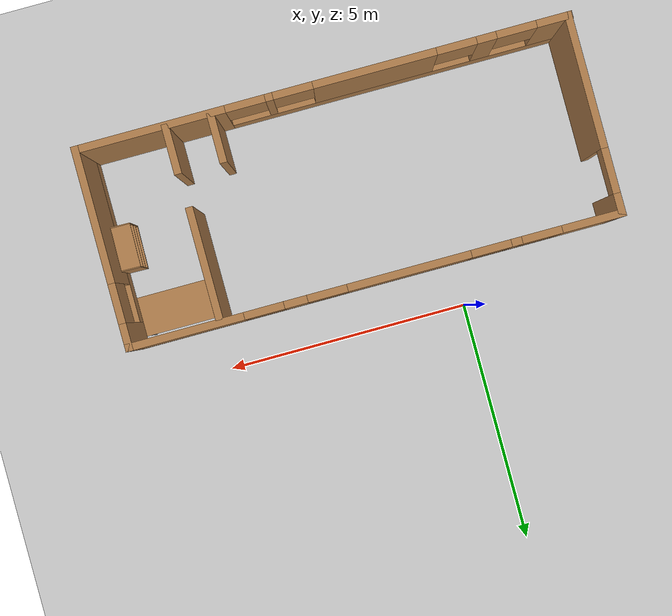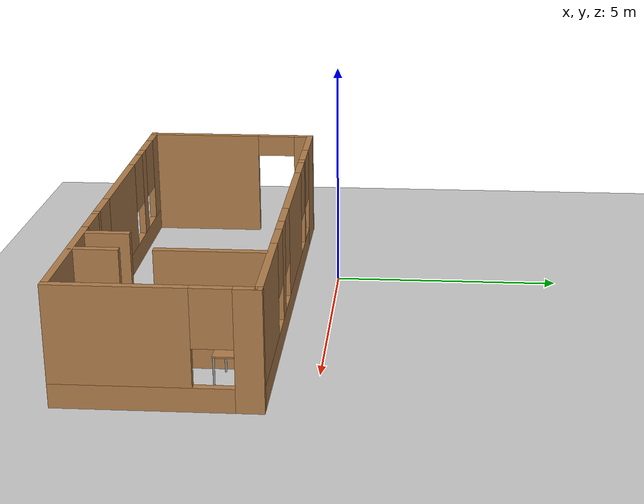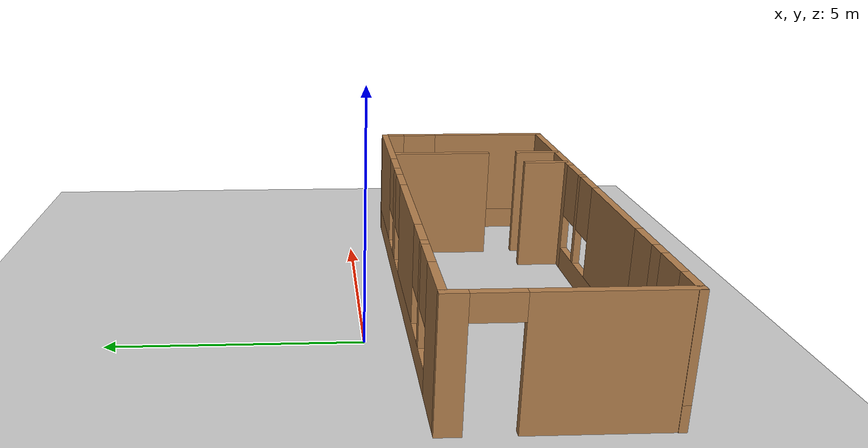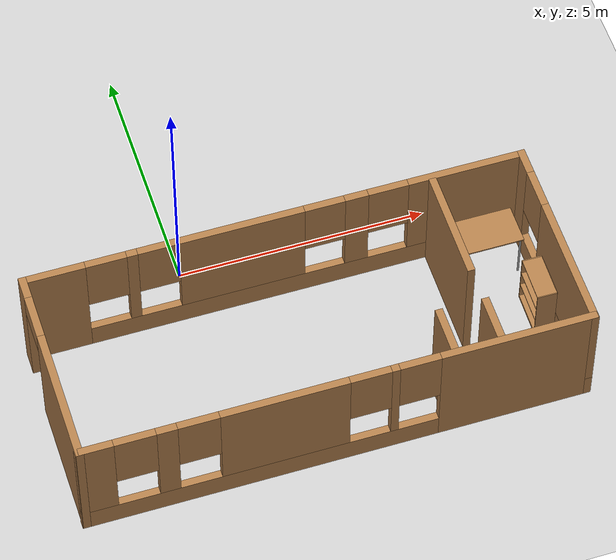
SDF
<sdf version="1.7">
 <world name="default">
  <light name="sun" type="directional">
   <pose>0 0 10 0 -0 0</pose>
   <diffuse>0.8 0.8 0.8 1</diffuse>
   <specular>0.2 0.2 0.2 1</specular>
   <attenuation>
    <range>1000</range>
    <constant>0.9</constant>
    <linear>0.01</linear>
    <quadratic>0.001</quadratic>
   </attenuation>
   <direction>-0.5 0.1 -0.9</direction>
   <spot><inner_angle>0</inner_angle><outer_angle>0</outer_angle><falloff>0</falloff></spot>
  </light>
  <model name="ground_plane">
   <static>1</static>
   <link name="link">
    <collision name="collision">
     <geometry><plane><normal>0 0 1</normal><size>100 100</size></plane></geometry>
     <surface>
      <contact><collide_bitmask>65535</collide_bitmask></contact>
      <friction><ode><mu>100</mu><mu2>50</mu2></ode></friction>
     </surface>
    </collision>
    <visual name="visual">
     <cast_shadows>0</cast_shadows>
     <geometry><plane><normal>0 0 1</normal><size>100 100</size></plane></geometry>
     <material>
      <script><uri>file://media/materials/scripts/gazebo.material</uri><name>Gazebo/Grey</name></script>
     </material>
    </visual>
   </link>
  </model>
  <gravity>0 0 -9.8</gravity>
  <magnetic_field>6e-06 2.3e-05 -4.2e-05</magnetic_field>
  <atmosphere type="adiabatic"/>
  <physics type="ode">
   <max_step_size>0.001</max_step_size>
   <real_time_factor>1</real_time_factor>
   <real_time_update_rate>1000</real_time_update_rate>
  </physics>
  <scene><ambient>0.4 0.4 0.4 1</ambient><background>0.7 0.7 0.7 1</background><shadows>1</shadows></scene>
  <spherical_coordinates>
   <surface_model>EARTH_WGS84</surface_model>
   <latitude_deg>0</latitude_deg>
   <longitude_deg>0</longitude_deg>
   <elevation>0</elevation>
   <heading_deg>0</heading_deg>
  </spherical_coordinates>
  <model name="Cafe_building">
   <pose>1.68925 -2.48379 0 0 -0 0</pose>
   <link name="Wall_0">
    <pose>0.00575 1.53379 0 0 -0 0</pose>
    <visual name="Wall_0_Visual_0">
     <pose>-4.365 0 1.25 0 -0 0</pose>
     <geometry><box><size>1.27 0.15 2.5</size></box></geometry>
     <material>
      <script><uri>file://media/materials/scripts/gazebo.material</uri><name>Gazebo/Wood</name></script>
      <ambient>1 1 1 1</ambient>
     </material>
     <meta><layer>0</layer></meta>
    </visual>
    <collision name="Wall_0_Collision_0">
     <geometry><box><size>1.27 0.15 2.5</size></box></geometry>
     <pose>-4.365 0 1.25 0 -0 0</pose>
    </collision>
    <visual name="Wall_0_Visual_1">
     <pose>0.635 0 0.25 0 -0 0</pose>
     <geometry><box><size>8.73 0.15 0.5</size></box></geometry>
     <material>
      <script><uri>file://media/materials/scripts/gazebo.material</uri><name>Gazebo/Wood</name></script>
      <ambient>1 1 1 1</ambient>
     </material>
     <meta><layer>0</layer></meta>
    </visual>
    <collision name="Wall_0_Collision_1">
     <geometry><box><size>8.73 0.15 0.5</size></box></geometry>
     <pose>0.635 0 0.25 0 -0 0</pose>
    </collision>
    <visual name="Wall_0_Visual_2">
     <pose>-2.824 0 1.5 0 -0 0</pose>
     <geometry><box><size>0.212 0.15 2</size></box></geometry>
     <material>
      <script><uri>file://media/materials/scripts/gazebo.material</uri><name>Gazebo/Wood</name></script>
      <ambient>1 1 1 1</ambient>
     </material>
     <meta><layer>0</layer></meta>
    </visual>
    <collision name="Wall_0_Collision_2">
     <geometry><box><size>0.212 0.15 2</size></box></geometry>
     <pose>-2.824 0 1.5 0 -0 0</pose>
    </collision>
    <visual name="Wall_0_Visual_3">
     <pose>-0.67925 0 1.5 0 -0 0</pose>
     <geometry><box><size>2.4775 0.15 2</size></box></geometry>
     <material>
      <script><uri>file://media/materials/scripts/gazebo.material</uri><name>Gazebo/Wood</name></script>
      <ambient>1 1 1 1</ambient>
     </material>
     <meta><layer>0</layer></meta>
    </visual>
    <collision name="Wall_0_Collision_3">
     <geometry><box><size>2.4775 0.15 2</size></box></geometry>
     <pose>-0.67925 0 1.5 0 -0 0</pose>
    </collision>
    <visual name="Wall_0_Visual_4">
     <pose>1.592 0 1.5 0 -0 0</pose>
     <geometry><box><size>0.465 0.15 2</size></box></geometry>
     <material>
      <script><uri>file://media/materials/scripts/gazebo.material</uri><name>Gazebo/Wood</name></script>
      <ambient>1 1 1 1</ambient>
     </material>
     <meta><layer>0</layer></meta>
    </visual>
    <collision name="Wall_0_Collision_4">
     <geometry><box><size>0.465 0.15 2</size></box></geometry>
     <pose>1.592 0 1.5 0 -0 0</pose>
    </collision>
    <visual name="Wall_0_Visual_5">
     <pose>3.81225 0 1.5 0 -0 0</pose>
     <geometry><box><size>2.3755 0.15 2</size></box></geometry>
     <material>
      <script><uri>file://media/materials/scripts/gazebo.material</uri><name>Gazebo/Wood</name></script>
      <ambient>1 1 1 1</ambient>
     </material>
     <meta><layer>0</layer></meta>
    </visual>
    <collision name="Wall_0_Collision_5">
     <geometry><box><size>2.3755 0.15 2</size></box></geometry>
     <pose>3.81225 0 1.5 0 -0 0</pose>
    </collision>
    <visual name="Wall_0_Visual_6">
     <pose>-3.33 0 1.9 0 -0 0</pose>
     <geometry><box><size>0.8 0.15 1.2</size></box></geometry>
     <material>
      <script><uri>file://media/materials/scripts/gazebo.material</uri><name>Gazebo/Wood</name></script>
      <ambient>1 1 1 1</ambient>
     </material>
     <meta><layer>0</layer></meta>
    </visual>
    <collision name="Wall_0_Collision_6">
     <geometry><box><size>0.8 0.15 1.2</size></box></geometry>
     <pose>-3.33 0 1.9 0 -0 0</pose>
    </collision>
    <visual name="Wall_0_Visual_7">
     <pose>-2.318 0 1.9 0 -0 0</pose>
     <geometry><box><size>0.8 0.15 1.2</size></box></geometry>
     <material>
      <script><uri>file://media/materials/scripts/gazebo.material</uri><name>Gazebo/Wood</name></script>
      <ambient>1 1 1 1</ambient>
     </material>
     <meta><layer>0</layer></meta>
    </visual>
    <collision name="Wall_0_Collision_7">
     <geometry><box><size>0.8 0.15 1.2</size></box></geometry>
     <pose>-2.318 0 1.9 0 -0 0</pose>
    </collision>
    <visual name="Wall_0_Visual_8">
     <pose>0.9595 0 1.9 0 -0 0</pose>
     <geometry><box><size>0.8 0.15 1.2</size></box></geometry>
     <material>
      <script><uri>file://media/materials/scripts/gazebo.material</uri><name>Gazebo/Wood</name></script>
      <ambient>1 1 1 1</ambient>
     </material>
     <meta><layer>0</layer></meta>
    </visual>
    <collision name="Wall_0_Collision_8">
     <geometry><box><size>0.8 0.15 1.2</size></box></geometry>
     <pose>0.9595 0 1.9 0 -0 0</pose>
    </collision>
    <visual name="Wall_0_Visual_9">
     <pose>2.2245 0 1.9 0 -0 0</pose>
     <geometry><box><size>0.8 0.15 1.2</size></box></geometry>
     <material>
      <script><uri>file://media/materials/scripts/gazebo.material</uri><name>Gazebo/Wood</name></script>
      <ambient>1 1 1 1</ambient>
     </material>
     <meta><layer>0</layer></meta>
    </visual>
    <collision name="Wall_0_Collision_9">
     <geometry><box><size>0.8 0.15 1.2</size></box></geometry>
     <pose>2.2245 0 1.9 0 -0 0</pose>
    </collision>
   </link>
   <link name="Wall_1">
    <pose>4.93075 -0.437462 0 0 -0 -1.5708</pose>
    <visual name="Wall_1_Visual_0">
     <pose>-1.77092 0 1.25 0 -0 0</pose>
     <geometry><box><size>0.55081 0.15 2.5</size></box></geometry>
     <material>
      <script><uri>file://media/materials/scripts/gazebo.material</uri><name>Gazebo/Wood</name></script>
      <ambient>1 1 1 1</ambient>
     </material>
     <meta><layer>0</layer></meta>
    </visual>
    <collision name="Wall_1_Collision_0">
     <geometry><box><size>0.55081 0.15 2.5</size></box></geometry>
     <pose>-1.77092 0 1.25 0 -0 0</pose>
    </collision>
    <visual name="Wall_1_Visual_1">
     <pose>0.275405 0 0.25 0 -0 0</pose>
     <geometry><box><size>3.54184 0.15 0.5</size></box></geometry>
     <material>
      <script><uri>file://media/materials/scripts/gazebo.material</uri><name>Gazebo/Wood</name></script>
      <ambient>1 1 1 1</ambient>
     </material>
     <meta><layer>0</layer></meta>
    </visual>
    <collision name="Wall_1_Collision_1">
     <geometry><box><size>3.54184 0.15 0.5</size></box></geometry>
     <pose>0.275405 0 0.25 0 -0 0</pose>
    </collision>
    <visual name="Wall_1_Visual_2">
     <pose>0.675405 0 1.5 0 -0 0</pose>
     <geometry><box><size>2.74184 0.15 2</size></box></geometry>
     <material>
      <script><uri>file://media/materials/scripts/gazebo.material</uri><name>Gazebo/Wood</name></script>
      <ambient>1 1 1 1</ambient>
     </material>
     <meta><layer>0</layer></meta>
    </visual>
    <collision name="Wall_1_Collision_2">
     <geometry><box><size>2.74184 0.15 2</size></box></geometry>
     <pose>0.675405 0 1.5 0 -0 0</pose>
    </collision>
    <visual name="Wall_1_Visual_3">
     <pose>-1.09552 0 1.9 0 -0 0</pose>
     <geometry><box><size>0.8 0.15 1.2</size></box></geometry>
     <material>
      <script><uri>file://media/materials/scripts/gazebo.material</uri><name>Gazebo/Wood</name></script>
      <ambient>1 1 1 1</ambient>
     </material>
     <meta><layer>0</layer></meta>
    </visual>
    <collision name="Wall_1_Collision_3">
     <geometry><box><size>0.8 0.15 1.2</size></box></geometry>
     <pose>-1.09552 0 1.9 0 -0 0</pose>
    </collision>
   </link>
   <link name="Wall_2">
    <pose>-0.00575 -2.40871 0 0 -0 3.14159</pose>
    <visual name="Wall_2_Visual_0">
     <pose>-3.473 0 1.25 0 -0 0</pose>
     <geometry><box><size>3.054 0.15 2.5</size></box></geometry>
     <material>
      <script><uri>file://media/materials/scripts/gazebo.material</uri><name>Gazebo/Wood</name></script>
      <ambient>1 1 1 1</ambient>
     </material>
     <meta><layer>0</layer></meta>
    </visual>
    <collision name="Wall_2_Collision_0">
     <geometry><box><size>3.054 0.15 2.5</size></box></geometry>
     <pose>-3.473 0 1.25 0 -0 0</pose>
    </collision>
    <visual name="Wall_2_Visual_1">
     <pose>1.527 0 0.25 0 -0 0</pose>
     <geometry><box><size>6.946 0.15 0.5</size></box></geometry>
     <material>
      <script><uri>file://media/materials/scripts/gazebo.material</uri><name>Gazebo/Wood</name></script>
      <ambient>1 1 1 1</ambient>
     </material>
     <meta><layer>0</layer></meta>
    </visual>
    <collision name="Wall_2_Collision_1">
     <geometry><box><size>6.946 0.15 0.5</size></box></geometry>
     <pose>1.527 0 0.25 0 -0 0</pose>
    </collision>
    <visual name="Wall_2_Visual_2">
     <pose>-1.06875 0 1.5 0 -0 0</pose>
     <geometry><box><size>0.1545 0.15 2</size></box></geometry>
     <material>
      <script><uri>file://media/materials/scripts/gazebo.material</uri><name>Gazebo/Wood</name></script>
      <ambient>1 1 1 1</ambient>
     </material>
     <meta><layer>0</layer></meta>
    </visual>
    <collision name="Wall_2_Collision_2">
     <geometry><box><size>0.1545 0.15 2</size></box></geometry>
     <pose>-1.06875 0 1.5 0 -0 0</pose>
    </collision>
    <visual name="Wall_2_Visual_3">
     <pose>1.04725 0 1.5 0 -0 0</pose>
     <geometry><box><size>2.4775 0.15 2</size></box></geometry>
     <material>
      <script><uri>file://media/materials/scripts/gazebo.material</uri><name>Gazebo/Wood</name></script>
      <ambient>1 1 1 1</ambient>
     </material>
     <meta><layer>0</layer></meta>
    </visual>
    <collision name="Wall_2_Collision_3">
     <geometry><box><size>2.4775 0.15 2</size></box></geometry>
     <pose>1.04725 0 1.5 0 -0 0</pose>
    </collision>
    <visual name="Wall_2_Visual_4">
     <pose>3.284 0 1.5 0 -0 0</pose>
     <geometry><box><size>0.396 0.15 2</size></box></geometry>
     <material>
      <script><uri>file://media/materials/scripts/gazebo.material</uri><name>Gazebo/Wood</name></script>
      <ambient>1 1 1 1</ambient>
     </material>
     <meta><layer>0</layer></meta>
    </visual>
    <collision name="Wall_2_Collision_4">
     <geometry><box><size>0.396 0.15 2</size></box></geometry>
     <pose>3.284 0 1.5 0 -0 0</pose>
    </collision>
    <visual name="Wall_2_Visual_5">
     <pose>4.641 0 1.5 0 -0 0</pose>
     <geometry><box><size>0.718 0.15 2</size></box></geometry>
     <material>
      <script><uri>file://media/materials/scripts/gazebo.material</uri><name>Gazebo/Wood</name></script>
      <ambient>1 1 1 1</ambient>
     </material>
     <meta><layer>0</layer></meta>
    </visual>
    <collision name="Wall_2_Collision_5">
     <geometry><box><size>0.718 0.15 2</size></box></geometry>
     <pose>4.641 0 1.5 0 -0 0</pose>
    </collision>
    <visual name="Wall_2_Visual_6">
     <pose>-1.546 0 1.9 0 -0 0</pose>
     <geometry><box><size>0.8 0.15 1.2</size></box></geometry>
     <material>
      <script><uri>file://media/materials/scripts/gazebo.material</uri><name>Gazebo/Wood</name></script>
      <ambient>1 1 1 1</ambient>
     </material>
     <meta><layer>0</layer></meta>
    </visual>
    <collision name="Wall_2_Collision_6">
     <geometry><box><size>0.8 0.15 1.2</size></box></geometry>
     <pose>-1.546 0 1.9 0 -0 0</pose>
    </collision>
    <visual name="Wall_2_Visual_7">
     <pose>-0.5915 0 1.9 0 -0 0</pose>
     <geometry><box><size>0.8 0.15 1.2</size></box></geometry>
     <material>
      <script><uri>file://media/materials/scripts/gazebo.material</uri><name>Gazebo/Wood</name></script>
      <ambient>1 1 1 1</ambient>
     </material>
     <meta><layer>0</layer></meta>
    </visual>
    <collision name="Wall_2_Collision_7">
     <geometry><box><size>0.8 0.15 1.2</size></box></geometry>
     <pose>-0.5915 0 1.9 0 -0 0</pose>
    </collision>
    <visual name="Wall_2_Visual_8">
     <pose>2.686 0 1.9 0 -0 0</pose>
     <geometry><box><size>0.8 0.15 1.2</size></box></geometry>
     <material>
      <script><uri>file://media/materials/scripts/gazebo.material</uri><name>Gazebo/Wood</name></script>
      <ambient>1 1 1 1</ambient>
     </material>
     <meta><layer>0</layer></meta>
    </visual>
    <collision name="Wall_2_Collision_8">
     <geometry><box><size>0.8 0.15 1.2</size></box></geometry>
     <pose>2.686 0 1.9 0 -0 0</pose>
    </collision>
    <visual name="Wall_2_Visual_9">
     <pose>3.882 0 1.9 0 -0 0</pose>
     <geometry><box><size>0.8 0.15 1.2</size></box></geometry>
     <material>
      <script><uri>file://media/materials/scripts/gazebo.material</uri><name>Gazebo/Wood</name></script>
      <ambient>1 1 1 1</ambient>
     </material>
     <meta><layer>0</layer></meta>
    </visual>
    <collision name="Wall_2_Collision_9">
     <geometry><box><size>0.8 0.15 1.2</size></box></geometry>
     <pose>3.882 0 1.9 0 -0 0</pose>
    </collision>
   </link>
   <link name="Wall_3">
    <pose>-4.91925 -0.437462 0 0 -0 1.5708</pose>
    <visual name="Wall_3_Visual_0">
     <pose>-0.684454 0 1.25 0 -0 0</pose>
     <geometry><box><size>2.72374 0.15 2.5</size></box></geometry>
     <material>
      <script><uri>file://media/materials/scripts/gazebo.material</uri><name>Gazebo/Wood</name></script>
      <ambient>1 1 1 1</ambient>
     </material>
     <meta><layer>0</layer></meta>
    </visual>
    <collision name="Wall_3_Collision_0">
     <geometry><box><size>2.72374 0.15 2.5</size></box></geometry>
     <pose>-0.684454 0 1.25 0 -0 0</pose>
    </collision>
    <visual name="Wall_3_Visual_1">
     <pose>1.81187 0 1.25 0 -0 0</pose>
     <geometry><box><size>0.468909 0.15 2.5</size></box></geometry>
     <material>
      <script><uri>file://media/materials/scripts/gazebo.material</uri><name>Gazebo/Wood</name></script>
      <ambient>1 1 1 1</ambient>
     </material>
     <meta><layer>0</layer></meta>
    </visual>
    <collision name="Wall_3_Collision_1">
     <geometry><box><size>0.468909 0.15 2.5</size></box></geometry>
     <pose>1.81187 0 1.25 0 -0 0</pose>
    </collision>
    <visual name="Wall_3_Visual_2">
     <pose>1.12742 0 2.25 0 -0 0</pose>
     <geometry><box><size>0.9 0.15 0.5</size></box></geometry>
     <material>
      <script><uri>file://media/materials/scripts/gazebo.material</uri><name>Gazebo/Wood</name></script>
      <ambient>1 1 1 1</ambient>
     </material>
     <meta><layer>0</layer></meta>
    </visual>
    <collision name="Wall_3_Collision_2">
     <geometry><box><size>0.9 0.15 0.5</size></box></geometry>
     <pose>1.12742 0 2.25 0 -0 0</pose>
    </collision>
   </link>
   <link name="Wall_5">
    <collision name="Wall_5_Collision">
     <geometry><box><size>1 0.15 2.5</size></box></geometry>
     <pose>0 0 1.25 0 -0 0</pose>
    </collision>
    <visual name="Wall_5_Visual">
     <pose>0 0 1.25 0 -0 0</pose>
     <geometry><box><size>1 0.15 2.5</size></box></geometry>
     <material>
      <script><uri>file://media/materials/scripts/gazebo.material</uri><name>Gazebo/Wood</name></script>
      <ambient>1 1 1 1</ambient>
     </material>
     <meta><layer>0</layer></meta>
    </visual>
    <pose>3.13525 -1.93671 0 0 -0 1.5708</pose>
   </link>
   <link name="Wall_7">
    <collision name="Wall_7_Collision">
     <geometry><box><size>1 0.15 2.5</size></box></geometry>
     <pose>0 0 1.25 0 -0 0</pose>
    </collision>
    <visual name="Wall_7_Visual">
     <pose>0 0 1.25 0 -0 0</pose>
     <geometry><box><size>1 0.15 2.5</size></box></geometry>
     <material>
      <script><uri>file://media/materials/scripts/gazebo.material</uri><name>Gazebo/Wood</name></script>
      <ambient>1 1 1 1</ambient>
     </material>
     <meta><layer>0</layer></meta>
    </visual>
    <pose>2.23275 -1.91921 0 0 -0 1.5708</pose>
   </link>
   <link name="Wall_9">
    <collision name="Wall_9_Collision">
     <geometry><box><size>2.25 0.15 2.5</size></box></geometry>
     <pose>0 0 1.25 0 -0 0</pose>
    </collision>
    <visual name="Wall_9_Visual">
     <pose>0 0 1.25 0 -0 0</pose>
     <geometry><box><size>2.25 0.15 2.5</size></box></geometry>
     <material>
      <script><uri>file://media/materials/scripts/gazebo.material</uri><name>Gazebo/Wood</name></script>
      <ambient>1 1 1 1</ambient>
     </material>
     <meta><layer>0</layer></meta>
    </visual>
    <pose>3.10375 0.354788 0 0 -0 -1.5708</pose>
   </link>
   <static>1</static>
  </model>
  <model name="table">
   <static>1</static>
   <link name="link">
    <collision name="surface">
     <pose>0 0 1 0 -0 0</pose>
     <geometry><box><size>1.5 0.8 0.03</size></box></geometry>
     <surface><friction><ode><mu>0.6</mu><mu2>0.6</mu2></ode></friction></surface>
    </collision>
    <visual name="visual1">
     <pose>0 0 1 0 -0 0</pose>
     <geometry><box><size>1.5 0.8 0.03</size></box></geometry>
     <material>
      <script><uri>file://media/materials/scripts/gazebo.material</uri><name>Gazebo/Wood</name></script>
     </material>
    </visual>
    <collision name="front_left_leg">
     <pose>0.68 0.38 0.5 0 -0 0</pose>
     <geometry><cylinder><radius>0.02</radius><length>1</length></cylinder></geometry>
    </collision>
    <visual name="front_left_leg">
     <pose>0.68 0.38 0.5 0 -0 0</pose>
     <geometry><cylinder><radius>0.02</radius><length>1</length></cylinder></geometry>
     <material>
      <script><uri>file://media/materials/scripts/gazebo.material</uri><name>Gazebo/Grey</name></script>
     </material>
    </visual>
    <collision name="front_right_leg">
     <pose>0.68 -0.38 0.5 0 -0 0</pose>
     <geometry><cylinder><radius>0.02</radius><length>1</length></cylinder></geometry>
    </collision>
    <visual name="front_right_leg">
     <pose>0.68 -0.38 0.5 0 -0 0</pose>
     <geometry><cylinder><radius>0.02</radius><length>1</length></cylinder></geometry>
     <material>
      <script><uri>file://media/materials/scripts/gazebo.material</uri><name>Gazebo/Grey</name></script>
     </material>
    </visual>
    <collision name="back_right_leg">
     <pose>-0.68 -0.38 0.5 0 -0 0</pose>
     <geometry><cylinder><radius>0.02</radius><length>1</length></cylinder></geometry>
    </collision>
    <visual name="back_right_leg">
     <pose>-0.68 -0.38 0.5 0 -0 0</pose>
     <geometry><cylinder><radius>0.02</radius><length>1</length></cylinder></geometry>
     <material>
      <script><uri>file://media/materials/scripts/gazebo.material</uri><name>Gazebo/Grey</name></script>
     </material>
    </visual>
    <collision name="back_left_leg">
     <pose>-0.68 0.38 0.5 0 -0 0</pose>
     <geometry><cylinder><radius>0.02</radius><length>1</length></cylinder></geometry>
    </collision>
    <visual name="back_left_leg">
     <pose>-0.68 0.38 0.5 0 -0 0</pose>
     <geometry><cylinder><radius>0.02</radius><length>1</length></cylinder></geometry>
     <material>
      <script><uri>file://media/materials/scripts/gazebo.material</uri><name>Gazebo/Grey</name></script>
     </material>
    </visual>
   </link>
   <pose>5.66227 -1.49178 0 0 -0 0</pose>
  </model>
  <model name="bookshelf">
   <static>1</static>
   <link name="link">
    <inertial><mass>1</mass></inertial>
    <collision name="back">
     <pose>0 0.005 0.6 0 -0 0</pose>
     <geometry><box><size>0.9 0.01 1.2</size></box></geometry>
    </collision>
    <visual name="visual1">
     <pose>0 0.005 0.6 0 -0 0</pose>
     <geometry><box><size>0.9 0.01 1.2</size></box></geometry>
     <material>
      <script><uri>file://media/materials/scripts/gazebo.material</uri><name>Gazebo/Wood</name></script>
     </material>
    </visual>
    <collision name="left_side">
     <pose>0.45 -0.195 0.6 0 -0 0</pose>
     <geometry><box><size>0.02 0.4 1.2</size></box></geometry>
    </collision>
    <visual name="visual2">
     <pose>0.45 -0.195 0.6 0 -0 0</pose>
     <geometry><box><size>0.02 0.4 1.2</size></box></geometry>
     <material>
      <script><uri>file://media/materials/scripts/gazebo.material</uri><name>Gazebo/Wood</name></script>
     </material>
    </visual>
    <collision name="right_side">
     <pose>-0.45 -0.195 0.6 0 -0 0</pose>
     <geometry><box><size>0.02 0.4 1.2</size></box></geometry>
    </collision>
    <visual name="visual3">
     <pose>-0.45 -0.195 0.6 0 -0 0</pose>
     <geometry><box><size>0.02 0.4 1.2</size></box></geometry>
     <material>
      <script><uri>file://media/materials/scripts/gazebo.material</uri><name>Gazebo/Wood</name></script>
     </material>
    </visual>
    <collision name="bottom">
     <pose>0 -0.195 0.03 0 -0 0</pose>
     <geometry><box><size>0.88 0.4 0.06</size></box></geometry>
    </collision>
    <visual name="visual4">
     <pose>0 -0.195 0.03 0 -0 0</pose>
     <geometry><box><size>0.88 0.4 0.06</size></box></geometry>
     <material>
      <script><uri>file://media/materials/scripts/gazebo.material</uri><name>Gazebo/Wood</name></script>
     </material>
    </visual>
    <collision name="top">
     <pose>0 -0.195 1.19 0 -0 0</pose>
     <geometry><box><size>0.88 0.4 0.02</size></box></geometry>
    </collision>
    <visual name="visual5">
     <pose>0 -0.195 1.19 0 -0 0</pose>
     <geometry><box><size>0.88 0.4 0.02</size></box></geometry>
     <material>
      <script><uri>file://media/materials/scripts/gazebo.material</uri><name>Gazebo/Wood</name></script>
     </material>
    </visual>
    <collision name="low_shelf">
     <pose>0 -0.195 0.43 0 -0 0</pose>
     <geometry><box><size>0.88 0.4 0.02</size></box></geometry>
    </collision>
    <visual name="visual6">
     <pose>0 -0.195 0.43 0 -0 0</pose>
     <geometry><box><size>0.88 0.4 0.02</size></box></geometry>
     <material>
      <script><uri>file://media/materials/scripts/gazebo.material</uri><name>Gazebo/Wood</name></script>
     </material>
    </visual>
    <collision name="high_shelf">
     <pose>0 -0.195 0.8 0 -0 0</pose>
     <geometry><box><size>0.88 0.4 0.02</size></box></geometry>
    </collision>
    <visual name="visual7">
     <pose>0 -0.195 0.8 0 -0 0</pose>
     <geometry><box><size>0.88 0.4 0.02</size></box></geometry>
     <material>
      <script><uri>file://media/materials/scripts/gazebo.material</uri><name>Gazebo/Wood</name></script>
     </material>
    </visual>
   </link>
   <pose>6.53338 -2.93585 0 0 0 -1.58778</pose>
  </model>
 </world>
</sdf>
